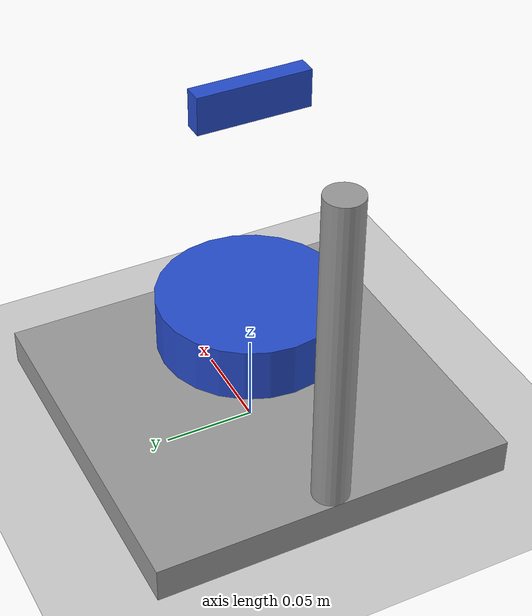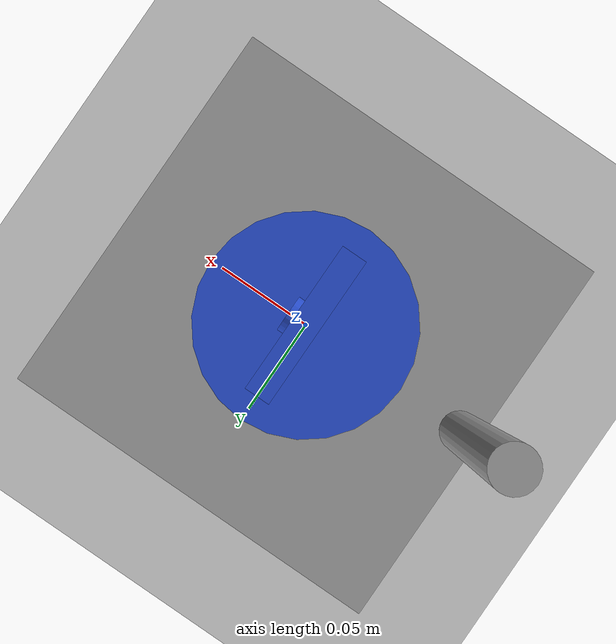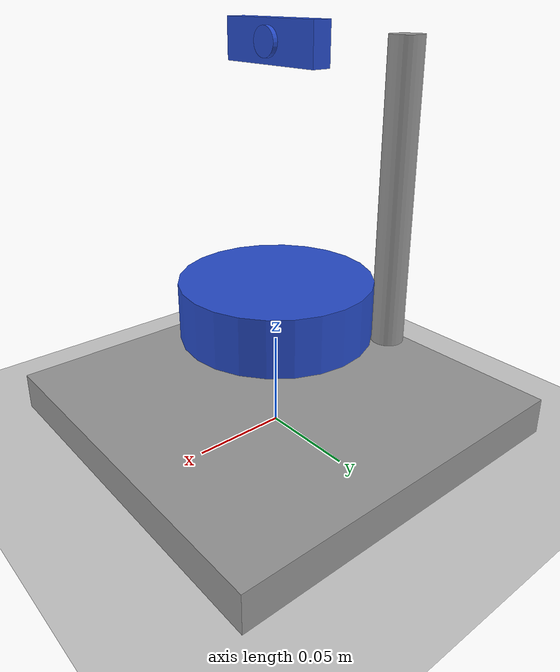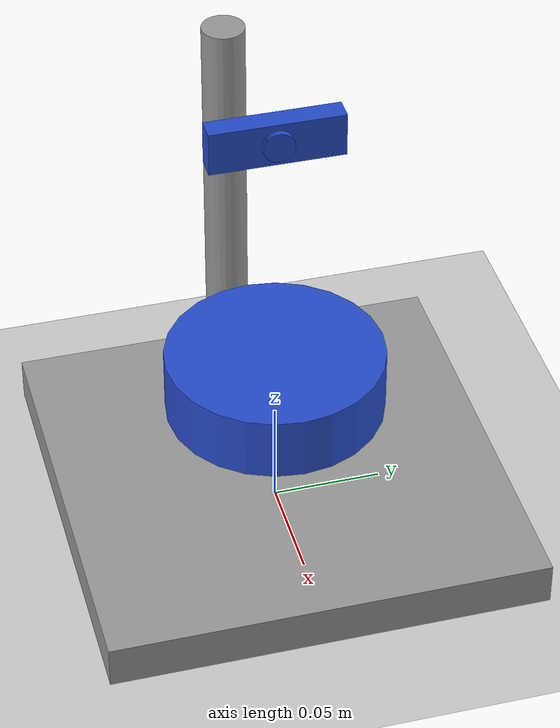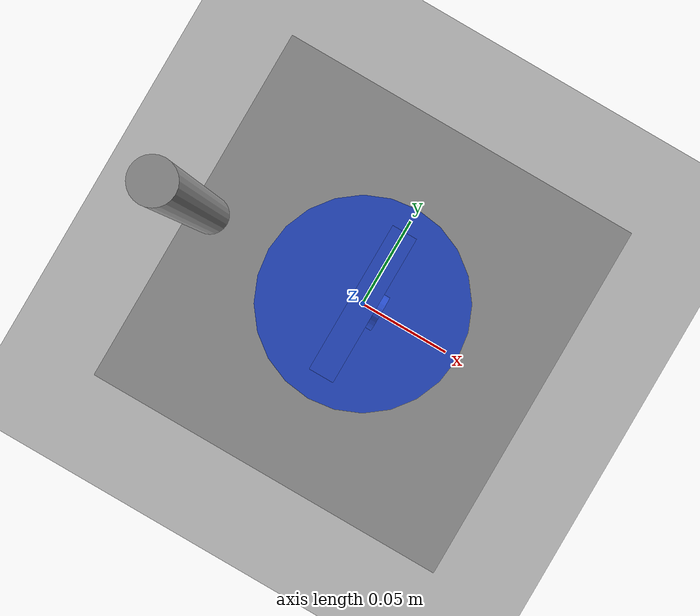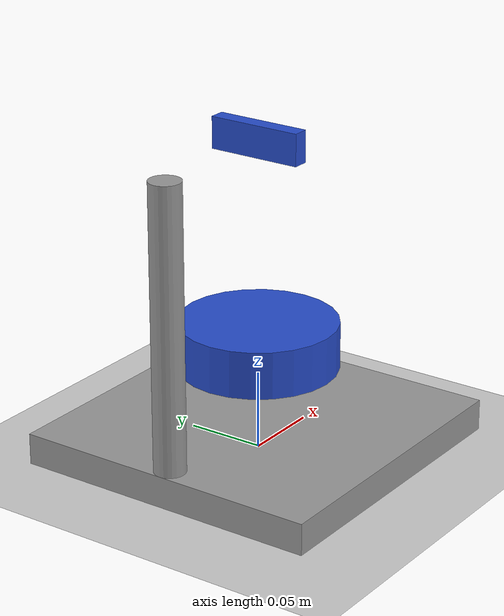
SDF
<sdf version="1.6">
 <world name="default">
  <include><uri>model://sun</uri></include>
  <include><uri>model://ground_plane</uri></include>
  <include><name>sensor_station</name><uri>model://sensor_station</uri></include>
  <light name="user_spot_light_0" type="spot">
   <pose>0 0 1 0 -0.9 0</pose>
   <diffuse>0.5 0.5 0.5 1</diffuse>
   <specular>0.4 0.4 0.4 1</specular>
   <direction>0 0 -1</direction>
   <attenuation>
    <range>20</range>
    <constant>0.5</constant>
    <linear>0.01</linear>
    <quadratic>0.001</quadratic>
   </attenuation>
   <cast_shadows>0</cast_shadows>
   <spot><inner_angle>0.6</inner_angle><outer_angle>1</outer_angle><falloff>1</falloff></spot>
  </light>
 </world>
</sdf>

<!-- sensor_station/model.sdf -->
<sdf version="1.4">
  <model name="env_large_room">
    <link name="base_link">
      <inertial>
        <mass>100.0</mass>
        <inertia>
          <ixx>33.4</ixx>
          <ixy>0.0</ixy>
          <ixz>0.0</ixz>
          <iyy>41.7</iyy>
          <iyz>0.0</iyz>
          <izz>8.42</izz>
        </inertia>
      </inertial>
      <collision name="collision">
        <pose>0 0 0.01 0 0 0</pose>
        <geometry>
          <box>
            <size>0.2 0.2 0.02</size>
          </box>
        </geometry>
      </collision>
      <visual name="visual">
        <pose>0 0 0.01 0 0 0</pose>
        <geometry>
          <box>
            <size>0.2 0.2 0.02</size>
          </box>
        </geometry>
        <material>
          <script>
            <uri>file://media/materials/scripts/gazebo.material</uri>
            <name>Gazebo/Gray</name>
          </script>
        </material>
      </visual>
    </link>

    <link name="lidar">
      <pose>0 0 0.07 0 0 0</pose>
      <collision name="collision">
        <geometry>
          <cylinder>
            <radius>0.05</radius>
            <length>0.03</length>
          </cylinder>
        </geometry>
      </collision>
      <visual name="visual">
        <geometry>
          <cylinder>
            <radius>0.05</radius>
            <length>0.03</length>
          </cylinder>
        </geometry>
        <material>
          <script>
            <uri>file://media/materials/scripts/gazebo.material</uri>
            <name>Gazebo/Blue</name>
          </script>
        </material>
      </visual>
      <sensor type="ray" name="lidar">
        <pose>0 0 0 0 0 0</pose>
        <update_rate>10</update_rate>
        <ray>
          <scan>
            <horizontal>
              <samples>200</samples>
              <resolution>1</resolution>
              <min_angle>-3.1415</min_angle>
              <max_angle>3.1415</max_angle>
            </horizontal>
          </scan>
          <range>
            <min>0.07</min>
            <max>20.0</max>
            <resolution>0.005</resolution>
          </range>
          <noise>
            <type>gaussian</type>
            <mean>0.0</mean>
            <stddev>0.01</stddev>
          </noise>
        </ray>
        <plugin name="gazebo_ros_lidar_controller" filename="libgazebo_ros_laser.so">
          <topicName>/laser/scan</topicName>
          <frameName>laser_link</frameName>
        </plugin>
      </sensor>
    </link>
    <joint name='lidar_joint' type='fixed'>
      <parent>base_link</parent>
      <child>lidar</child>
      <pose>0 0 0 0 0 0</pose>
    </joint>

    <link name="camera">
      <pose>0 0 0.2 0 0 0</pose>
      <collision name="collision">
        <geometry>
          <box>
            <size>0.01 0.06 0.02</size>
          </box>
        </geometry>
      </collision>
      <visual name="visual1">
        <geometry>
          <box>
            <size>0.01 0.06 0.02</size>
          </box>
        </geometry>
        <material>
          <script>
            <uri>file://media/materials/scripts/gazebo.material</uri>
            <name>Gazebo/Blue</name>
          </script>
        </material>
      </visual>
      <visual name="visual2">
        <pose>0.005 0 0 0 1.5707 0</pose>
        <geometry>
          <cylinder>
            <radius>0.007</radius>
            <length>0.005</length>
          </cylinder>
        </geometry>
        <material>
          <script>
            <uri>file://media/materials/scripts/gazebo.material</uri>
            <name>Gazebo/Blue</name>
          </script>
        </material>
      </visual>
      <sensor type="camera" name="camera1">
        <update_rate>10.0</update_rate>
        <camera name="head">
          <horizontal_fov>1.3</horizontal_fov>
          <image>
            <width>800</width>
            <height>600</height>
            <format>R8G8B8</format>
          </image>
          <clip>
            <near>0.02</near>
            <far>300</far>
          </clip>
          <noise>
            <type>gaussian</type>
            <mean>0.0</mean>
            <stddev>0.007</stddev>
          </noise>
        </camera>
        <plugin name="camera_controller" filename="libgazebo_ros_camera.so">
          <alwaysOn>true</alwaysOn>
          <updateRate>0.0</updateRate>
          <cameraName>head_camera</cameraName>
          <imageTopicName>image_raw</imageTopicName>
          <cameraInfoTopicName>camera_info</cameraInfoTopicName>
          <frameName>camera_optical_link</frameName>
          <hackBaseline>0.0</hackBaseline>
          <distortionK1>0.0</distortionK1>
          <distortionK2>0.0</distortionK2>
          <distortionK3>0.0</distortionK3>
          <distortionT1>0.0</distortionT1>
          <distortionT2>0.0</distortionT2>
        </plugin>
      </sensor>
    </link>
    <joint name='camera_joint' type='fixed'>
      <parent>base_link</parent>
      <child>camera</child>
      <pose>0 0 0 0 0 0</pose>
    </joint>

    <link name="bar">
      <pose>-0.09 0 0.1 0 0 0</pose>
      <collision name="collision">
        <geometry>
          <cylinder>
            <radius>0.01</radius>
            <length>0.2</length>
          </cylinder>
        </geometry>
      </collision>
      <visual name="visual">
        <geometry>
          <cylinder>
            <radius>0.01</radius>
            <length>0.2</length>
          </cylinder>
        </geometry>
        <material>
          <script>
            <uri>file://media/materials/scripts/gazebo.material</uri>
            <name>Gazebo/Gray</name>
          </script>
        </material>
      </visual>
    </link>

    <joint name='bar_joint' type='fixed'>
      <parent>base_link</parent>
      <child>bar</child>
      <pose>0 0 0 0 0 0</pose>
    </joint>

    <plugin name="ground_truth" filename="libgazebo_ros_p3d.so">
      <frameName>world</frameName>
      <bodyName>base_link</bodyName>
      <topicName>/tracker</topicName>
      <updateRate>10.0</updateRate>
    </plugin>
  </model>
</sdf>
